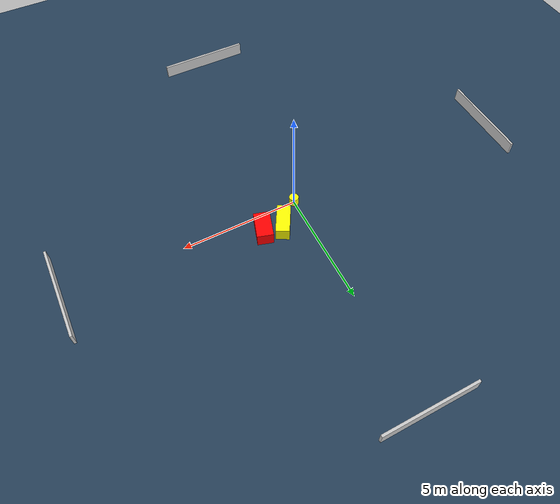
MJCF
<?xml version="1.0" ?>
<mujoco model="generated_environment">
  <option timestep="0.01" integrator="RK4" cone="elliptic"/>
  <default>
    <geom density="1"/>
  </default>
  <asset>
    <texture builtin="gradient" height="3072" name="skybox" rgb1="0.3 0.5 0.7" rgb2="0 0 0" type="skybox" width="512"/>
    <texture builtin="checker" height="300" name="groundplane" rgb1="0.2 0.3 0.4" rgb2="0.1 0.2 0.3" type="2d" width="300"/>
    <material name="groundplane" reflectance="0.2" texrepeat="5 5" texture="groundplane"/>
  </asset>
  <worldbody>
    <light dir="0 0 -1" directional="true" pos="0 0 1.5"/>
    <geom condim="3" friction="0.5 0.005 0.001" material="groundplane" name="floor" pos="0 0 0" size="0 0 0.05" type="plane"/>
    <body name="walls">
      <geom name="wall_1" condim="4" pos="-10.0 0.0 0.3" rgba="0.800000011920929 0.800000011920929 0.800000011920929 1.0" size="0.05 2.0 0.3" type="box"/>
      <geom name="wall_2" condim="4" pos="10.0 0.0 0.3" rgba="0.800000011920929 0.800000011920929 0.800000011920929 1.0" size="0.05 2.0 0.3" type="box"/>
      <geom name="wall_3" condim="4" pos="0.0 -10.0 0.3" rgba="0.800000011920929 0.800000011920929 0.800000011920929 1.0" size="2.0 0.05 0.3" type="box"/>
      <geom name="wall_4" condim="4" pos="0.0 10.0 0.3" rgba="0.800000011920929 0.800000011920929 0.800000011920929 1.0" size="2.0 0.05 0.3" type="box"/>
    </body>
    <body name="robot">
      <joint name="joint_x" type="slide" pos="0 0 0" axis="1 0 0"/>
      <joint name="joint_y" type="slide" pos="0 0 0" axis="0 1 0"/>
      <geom name="robot" type="cylinder" pos="0.0 0.0 0.2" size="0.2 0.2 0.0" mass="5.0" friction="1.0 0.005 0.0001" condim="4" rgba="1.0 1.0 0.0 1.0"/>
    </body>
    <body name="obstacle_1_movable">
      <geom name="obstacle_1_movable" condim="4" pos="0.9528167107639997 0.8883985761646573 0.3" euler="0 0 240.7458452770571" friction="0.0 0.005 0.001" rgba="1.0 1.0 0.0 1.0" size="0.6401502010141514 0.28541157365928715 0.3" type="box" mass="0.1"/>
      <joint type="free"/>
    </body>
    <body name="obstacle_2_static">
      <geom name="obstacle_2_static" condim="4" pos="1.7997965612513858 0.7791524335005288 0.3" euler="0 0 342.7614216159385" friction="0.0 0.005 0.001" rgba="1.0 0.0 0.0 1.0" size="0.3429688230079574 0.5765815045570206 0.3" type="box"/>
    </body>
  </worldbody>
  <actuator>
    <motor name="actuator_x" joint="joint_x" gear="1" ctrlrange="-1 1"/>
    <motor name="actuator_y" joint="joint_y" gear="1" ctrlrange="-1 1"/>
  </actuator>
</mujoco>
